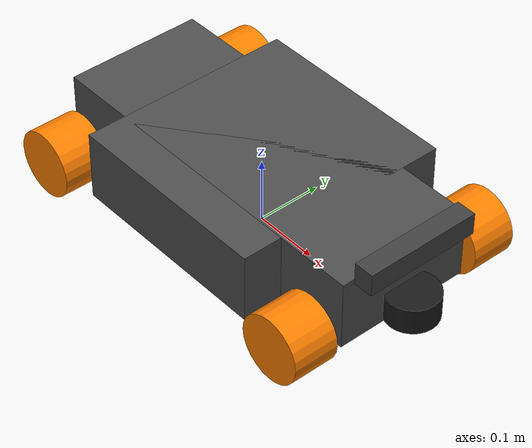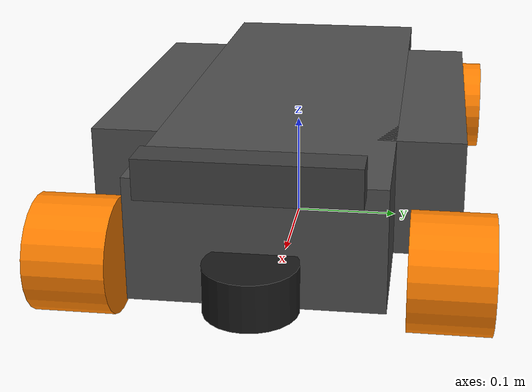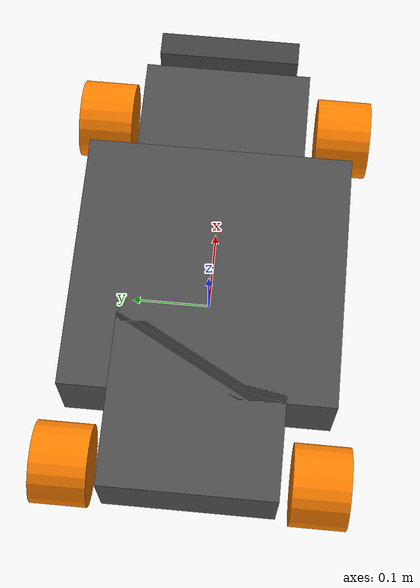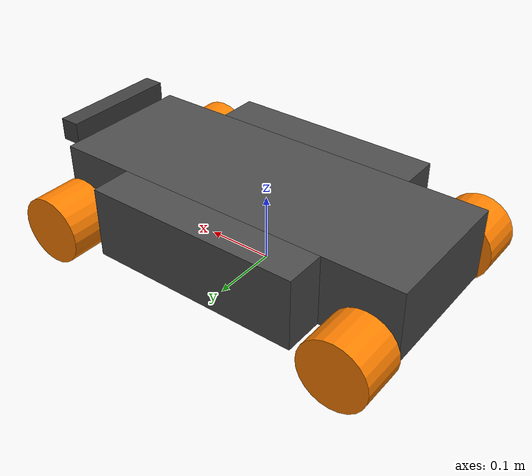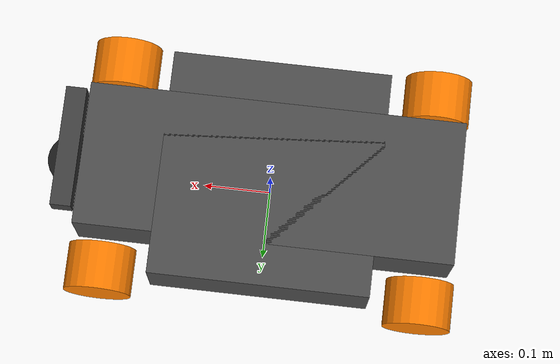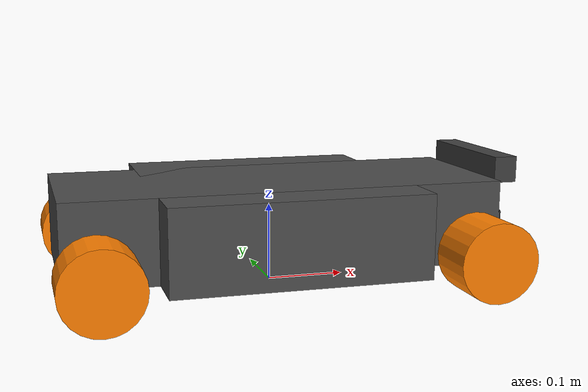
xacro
<?xml version="1.0"?>
<robot name="caramelo" xmlns:xacro="http://ros.org/wiki/xacro">

  <!-- Propriedades -->
  <xacro:property name="M_PI" value="3.1415926535897931" />

  <!-- Argumentos -->
  <xacro:arg name="robot_name" default="caramelo"/>
  <xacro:arg name="prefix" default=""/>

  <!-- Argumento para Gazebo Ignition ou Gazebo Classic -->
  <xacro:arg name="is_ignition" default="true"/>

  <!-- Inclusões -->
  <xacro:include filename="$(find caramelo_description)/URDF/robot_base.xacro" />
  <xacro:include filename="$(find caramelo_description)/URDF/robot_mecanum_wheel.xacro" />
  <xacro:include filename="$(find caramelo_description)/URDF/lidar_sensor.xacro" />
  <xacro:include filename="$(find caramelo_description)/URDF/zed_camera.xacro" />
  <xacro:include filename="$(find caramelo_description)/URDF/robot_ros2_control.xacro" />

  <!-- Base -->
  <xacro:robot_base
    prefix="$(arg prefix)"/>

  <!-- Rodas mecanum -->
  <xacro:mecanum_wheel
    prefix="$(arg prefix)"
    side="front_left"
    x_reflect="1"
    y_reflect="1"/>

  <xacro:mecanum_wheel
    prefix="$(arg prefix)"
    side="front_right"
    x_reflect="1"
    y_reflect="-1"/>

  <xacro:mecanum_wheel
    prefix="$(arg prefix)"
    side="back_left"
    x_reflect="-1"
    y_reflect="1"/>

  <xacro:mecanum_wheel
    prefix="$(arg prefix)"
    side="back_right"
    x_reflect="-1"
    y_reflect="-1"/>

  <!-- RPLidar S2 - Posicionado na face frontal do robô -->
  <xacro:lidar_sensor
    prefix="$(arg prefix)"
    parent="base_link"
    frame_id="laser_frame"
    xyz_offset="0.292 0 0.026"
    rpy_offset="0 0 0"
    mesh_xyz_offset="0 0 0"
    mesh_rpy_offset="0 0 0"
    topic_name="scan"/>

  <!-- ZED 2i Camera - Posicionada no centro especificado -->
  <xacro:zed_camera
    prefix="$(arg prefix)"
    parent="base_link"
    frame_id="zed_camera"
    xyz_offset="0.291 0 0.116"
    rpy_offset="0 0 0"
    mesh_xyz_offset="0 0 0"
    mesh_rpy_offset="0 0 ${M_PI/2}"
    is_ignition="$(arg is_ignition)"/>

</robot>

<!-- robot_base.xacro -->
<robot xmlns:xacro="http://www.ros.org/wiki/xacro">

  <!-- Propriedades da base do robô Caramelo -->
  <xacro:property name="mass" value="22.0"/>
  <xacro:property name="width_vertical" value="0.550"/>   <!-- Comprimento -->
  <xacro:property name="depth_vertical" value="0.210"/>   <!-- Largura -->
  <xacro:property name="width_horizontal" value="0.330"/>   <!-- Comprimento -->
  <xacro:property name="depth_horizontal" value="0.320"/>   <!-- Largura -->
  <xacro:property name="height" value="0.105"/>  <!-- Altura -->
  <xacro:property name="wheel_radius" value="0.05"/>

  <xacro:macro name="robot_base" params="prefix">
    <!-- BAsefootprint link -->
    <link name="${prefix}base_footprint"/>

    <!-- Link da base (base_link agora toca o chão) -->
    <link name="${prefix}base_link">

      <visual>
        <origin xyz="0 0 ${height/2.0}" rpy="0 0 0"/>
        <geometry>
          <box size="${width_vertical} ${depth_vertical} ${height}"/>
        </geometry>
        <material name="darkgray">
          <color rgba="0.3 0.3 0.3 1.0"/>
        </material>
      </visual>
      <visual>
        <origin xyz="0 0 ${height/2.0}" rpy="0 0 0"/>
        <geometry>
          <box size="${depth_horizontal} ${width_horizontal} ${height}"/>
        </geometry>
        <material name="darkgray">
          <color rgba="0.3 0.3 0.3 1.0"/>
        </material>
      </visual>

      <collision>
        <origin xyz="0 0 ${height/2.0}" rpy="0 0 0"/>
        <geometry>
          <box size="${width_vertical} ${depth_vertical} ${height}"/>
        </geometry>
      </collision>

      <inertial>
        <mass value="${mass}"/>
        <origin xyz="0 0 ${height/2.0}" rpy="0 0 0"/>
        <inertia
          ixx="${1/12.0 * mass * (height*height + depth_vertical*depth_vertical)}"
          iyy="${1/12.0 * mass * (width_vertical*width_vertical + depth_vertical*depth_vertical)}"
          izz="${1/12.0 * mass * (width_vertical*width_vertical + height*height)}"
          ixy="0.0" ixz="0.0" iyz="0.0"/>
      </inertial>
    </link>

    <!-- Joint com o footprint (ajustado para as dimensões do Caramelo) -->
    <joint name="${prefix}base_joint" type="fixed">
      <parent link="${prefix}base_footprint"/>
      <child link="${prefix}base_link"/>
      <origin xyz="0 0 ${wheel_radius - 0.02}" rpy="0 0 0"/>
    </joint>

    <!-- Aparência no Gazebo -->
    <gazebo reference="${prefix}base_link">
      <visual>
        <material>
          <ambient>0.3 0.3 0.3 1.0</ambient>
          <diffuse>0.3 0.3 0.3 1.0</diffuse>
          <specular>0.1 0.1 0.1 1.0</specular>
          <emissive>0.0 0.0 0.0 1.0</emissive>
        </material>
      </visual>
    </gazebo>

  </xacro:macro>

</robot>

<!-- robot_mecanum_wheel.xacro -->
<robot xmlns:xacro="http://www.ros.org/wiki/xacro">

  <!-- Especificações das rodas mecanum do robô Caramelo -->
  <xacro:property name="wheel_radius" value="0.05" />
  <xacro:property name="wheel_width" value="0.069" />
  <xacro:property name="wheel_mass" value="3.0" />
  <xacro:property name="wheel_separation" value="0.310" /> <!-- Distância entre as rodas 21 + 3 + 7 -->
  <xacro:property name="wheel_base" value="0.470" />

  <xacro:macro name="mecanum_wheel" params="prefix side x_reflect y_reflect">
    <link name="${prefix}${side}_wheel_link">
      <!-- Geometria visual: roda como cilindro -->
      <visual>
        <origin xyz="0 0 0" rpy="${pi/2} 0 0"/>
        <geometry>
          <cylinder radius="${wheel_radius}" length="${wheel_width}"/>
        </geometry>
        <material name="orange">
          <color rgba="1.0 0.5 0.0 1.0"/>
        </material>
      </visual>

      <!-- Geometria de colisão: cilindro simples para otimização de performance -->
      <collision>
        <origin xyz="0 0 0" rpy="${pi/2} 0 0"/>
        <geometry>
          <cylinder radius="${wheel_radius}" length="${wheel_width}"/>
        </geometry>
      </collision>

      <!-- Propriedades inerciais baseadas no cilindro -->
      <inertial>
        <origin xyz="0 0 0" rpy="0 0 0"/>
        <mass value="${wheel_mass}"/>
        <inertia
          ixx="${(wheel_mass/12.0) * (3*wheel_radius*wheel_radius + wheel_width*wheel_width)}" ixy="0" ixz="0"
          iyy="${(wheel_mass/2.0) * (wheel_radius*wheel_radius)}" iyz="0"
          izz="${(wheel_mass/12.0) * (3*wheel_radius*wheel_radius + wheel_width*wheel_width)}"/>
      </inertial>
    </link>

    <!-- Joint da roda: rotação contínua em torno do eixo Y -->
    <joint name="${prefix}${side}_wheel_joint" type="continuous">
      <axis xyz="0 1 0"/>
      <parent link="${prefix}base_link"/>
      <child link="${prefix}${side}_wheel_link"/>
      <origin xyz="${x_reflect*(wheel_base/2)} ${y_reflect*(wheel_separation/2)} 0.02" rpy="0 0 0"/>
    </joint>

    <!-- Configurações específicas do Gazebo para as rodas mecanum -->
    <gazebo reference="${prefix}${side}_wheel_link">
      <surface>
        <friction>
          <ode>
              <mu>1.0</mu>
              <mu2>0.0</mu2>
          </ode>
        </friction>
      </surface>
      <visual>
          <material>
              <ambient>1.0 0.5 0.0 1.0</ambient>
              <diffuse>1.0 0.5 0.0 1.0</diffuse>
              <specular>0.2 0.2 0.2 1.0</specular>
              <emissive>0.0 0.0 0.0 0.0</emissive>
          </material>
      </visual>
  </gazebo>

  </xacro:macro>
</robot>

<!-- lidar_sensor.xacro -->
<robot xmlns:xacro="http://www.ros.org/wiki/xacro">
  <xacro:property name="M_PI" value="3.1415926535897931" />

  <xacro:macro name="lidar_sensor" params="
    prefix:=''
    parent:='base_link'
    frame_id:='laser_frame'
    xyz_offset:='0 0 0'
    rpy_offset:='0 0 0'
    mesh_xyz_offset:='0 0 0'
    mesh_rpy_offset:='${-M_PI/2} 0 0'
    mesh_scale:='0.001 0.001 0.001'
    collision_xyz_offset:='0 0 0'
    collision_rpy_offset:='0 0 0'
    inertial_xyz_offset:='0 0 0'
    inertial_rpy_offset:='0 0 0'
    lidar_width:=0.077
    lidar_height:=0.0398
    mass:=0.185
    material_name:='rplidar_black'
    material_color:='0.1 0.1 0.1 1'
    gazebo_material_ambient:='0.1 0.1 0.1 1'
    gazebo_material_diffuse:='0.1 0.1 0.1 1'
    gazebo_material_specular:='0.1 0.1 0.1 1'
    update_rate:=10
    ray_count:=720
    min_angle:='-3.14159'
    max_angle:='3.14159'
    min_range:='0.20'
    max_range:='30.0'
    range_resolution:='0.013'
    topic_name:='scan'
    always_on:=true
    visualize:=false
    enable_collision:=false">

    <xacro:property name="radius" value="${lidar_width/2}" />
    <xacro:property name="ixx_iyy" value="${(mass/12) * (3 * radius * radius + lidar_height * lidar_height)}" />
    <xacro:property name="izz" value="${(mass/2) * (radius * radius)}" />

    <link name="${prefix}${frame_id}">
      <visual>
        <origin xyz="${mesh_xyz_offset}" rpy="${mesh_rpy_offset}"/>
        <geometry>
          <cylinder radius="${lidar_width/2}" length="${lidar_height}"/>
        </geometry>
        <material name="${material_name}">
          <color rgba="${material_color}"/>
        </material>
      </visual>

      <xacro:if value="${enable_collision}">
        <collision>
          <origin xyz="${collision_xyz_offset}" rpy="${collision_rpy_offset}"/>
          <geometry>
            <cylinder radius="${lidar_width/2}" length="${lidar_height}"/>
          </geometry>
        </collision>
      </xacro:if>

      <inertial>
        <mass value="${mass}" />
        <origin xyz="${inertial_xyz_offset}" rpy="${inertial_rpy_offset}"/>
        <inertia
          ixx="${ixx_iyy}"
          ixy="0.0"
          ixz="0.0"
          iyy="${ixx_iyy}"
          iyz="0.0"
          izz="${izz}" />
      </inertial>
    </link>

    <joint name="${prefix}${frame_id}_joint" type="fixed">
      <parent link="${prefix}${parent}"/>
      <child link="${prefix}${frame_id}" />
      <origin xyz="${xyz_offset}" rpy="${rpy_offset}"/>
    </joint>

    <gazebo reference="${prefix}${frame_id}">
      <material>
        <ambient>${gazebo_material_ambient}</ambient>
        <diffuse>${gazebo_material_diffuse}</diffuse>
        <specular>${gazebo_material_specular}</specular>
      </material>
      <sensor name="${prefix}lidar_sensor" type="gpu_lidar">
        <topic>${topic_name}</topic>
        <update_rate>${update_rate}</update_rate>
        <always_on>${always_on}</always_on>
        <visualize>${visualize}</visualize>
        <ray>
          <scan>
            <horizontal>
              <samples>${ray_count}</samples>
              <resolution>1</resolution>
              <min_angle>${min_angle}</min_angle>
              <max_angle>${max_angle}</max_angle>
            </horizontal>
            <vertical>
              <samples>1</samples>
              <resolution>1</resolution>
              <min_angle>0</min_angle>
              <max_angle>0</max_angle>
            </vertical>
          </scan>
          <range>
            <min>${min_range}</min>
            <max>${max_range}</max>
            <resolution>${range_resolution}</resolution>
          </range>
        </ray>
        <gz_frame_id>${prefix}${frame_id}</gz_frame_id>
      </sensor>
    </gazebo>
  </xacro:macro>
</robot>

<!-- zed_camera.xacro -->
<robot xmlns:xacro="http://www.ros.org/wiki/xacro">

  <!-- Propriedades da ZED 2i -->
  <xacro:property name="zed_baseline" value="0.12"/>  <!-- Distância entre câmeras estéreo -->
  <xacro:property name="zed_height" value="0.033"/>   <!-- Altura da ZED 2i -->
  <xacro:property name="zed_bottom_clearance" value="0.004"/>
  <xacro:property name="zed_screw_offset_x" value="0.0"/>
  <xacro:property name="zed_screw_offset_z" value="0.0"/>

  <!-- Dimensões físicas da ZED 2i -->
  <xacro:property name="zed_width" value="0.175"/>    <!-- Largura -->
  <xacro:property name="zed_depth" value="0.030"/>    <!-- Profundidade -->
  <xacro:property name="zed_mass" value="0.159"/>     <!-- Massa em kg -->

  <!-- Macro da câmera ZED 2i -->
  <xacro:macro name="zed_camera" params="
               prefix
               parent
               frame_id
               xyz_offset:='0 0 0'
               rpy_offset:='0 0 0'
               mesh_xyz_offset:='0 0 0'
               mesh_rpy_offset:='0 0 0'
               is_ignition:=true">

    <!-- Joint conectando ao link pai -->
    <joint name="${prefix}${frame_id}_joint" type="fixed">
      <parent link="${parent}"/>
      <child link="${prefix}${frame_id}"/>
      <origin xyz="${xyz_offset}" rpy="${rpy_offset}"/>
    </joint>

    <!-- Link principal da ZED -->
    <link name="${prefix}${frame_id}">
      <visual>
        <origin xyz="${mesh_xyz_offset}" rpy="${mesh_rpy_offset}"/>
        <geometry>
          <box size="${zed_width} ${zed_depth} ${zed_height}"/>
        </geometry>
        <material name="zed_mat">
          <color rgba="0.25 0.25 0.25 0.99"/>
        </material>
      </visual>

      <collision>
        <origin xyz="0 0 0" rpy="0 0 0"/>
        <geometry>
          <box size="${zed_width} ${zed_depth} ${zed_height}"/>
        </geometry>
      </collision>

      <inertial>
        <mass value="${zed_mass}"/>
        <origin xyz="0 0 0" rpy="0 0 0"/>
        <inertia ixx="0.000239" ixy="0.0" ixz="0.0"
                 iyy="0.000239" iyz="0.0"
                 izz="0.000451"/>
      </inertial>
    </link>

    <!-- Link da câmera esquerda -->
    <joint name="${prefix}${frame_id}_left_camera_joint" type="fixed">
      <parent link="${prefix}${frame_id}"/>
      <child link="${prefix}${frame_id}_left_camera_frame"/>
      <origin xyz="0 ${zed_baseline/2} 0" rpy="0 0 0"/>
    </joint>

    <link name="${prefix}${frame_id}_left_camera_frame"/>

    <!-- Joint da câmera esquerda optical -->
    <joint name="${prefix}${frame_id}_left_camera_optical_joint" type="fixed">
      <parent link="${prefix}${frame_id}_left_camera_frame"/>
      <child link="${prefix}${frame_id}_left_camera_optical_frame"/>
      <origin xyz="0 0 0" rpy="-1.5708 0 -1.5708"/>
    </joint>

    <link name="${prefix}${frame_id}_left_camera_optical_frame"/>

    <!-- Link da câmera direita -->
    <joint name="${prefix}${frame_id}_right_camera_joint" type="fixed">
      <parent link="${prefix}${frame_id}"/>
      <child link="${prefix}${frame_id}_right_camera_frame"/>
      <origin xyz="0 -${zed_baseline/2} 0" rpy="0 0 0"/>
    </joint>

    <link name="${prefix}${frame_id}_right_camera_frame"/>

    <!-- Joint da câmera direita optical -->
    <joint name="${prefix}${frame_id}_right_camera_optical_joint" type="fixed">
      <parent link="${prefix}${frame_id}_right_camera_frame"/>
      <child link="${prefix}${frame_id}_right_camera_optical_frame"/>
      <origin xyz="0 0 0" rpy="-1.5708 0 -1.5708"/>
    </joint>

    <link name="${prefix}${frame_id}_right_camera_optical_frame"/>

    <!-- IMU Link -->
    <joint name="${prefix}${frame_id}_imu_joint" type="fixed">
      <parent link="${prefix}${frame_id}"/>
      <child link="${prefix}${frame_id}_imu_link"/>
      <origin xyz="0 0 0" rpy="0 0 0"/>
    </joint>

    <link name="${prefix}${frame_id}_imu_link"/>

    <!-- Plugin do Gazebo para a ZED (Ignition Gazebo) -->
    <xacro:if value="${is_ignition}">
      <gazebo reference="${prefix}${frame_id}">
        <!-- Plugin da câmera estéreo -->
        <sensor name="zed_left_camera" type="camera">
          <pose>0 ${zed_baseline/2} 0 0 0 0</pose>
          <camera>
            <horizontal_fov>1.919</horizontal_fov>
            <image>
              <width>1280</width>
              <height>720</height>
              <format>R8G8B8</format>
            </image>
            <clip>
              <near>0.02</near>
              <far>300</far>
            </clip>
            <noise>
              <type>gaussian</type>
              <mean>0.0</mean>
              <stddev>0.007</stddev>
            </noise>
          </camera>
          <always_on>1</always_on>
          <update_rate>30</update_rate>
          <visualize>false</visualize>
          <topic>zed/left/image_rect_color</topic>
        </sensor>

        <sensor name="zed_right_camera" type="camera">
          <pose>0 -${zed_baseline/2} 0 0 0 0</pose>
          <camera>
            <horizontal_fov>1.919</horizontal_fov>
            <image>
              <width>1280</width>
              <height>720</height>
              <format>R8G8B8</format>
            </image>
            <clip>
              <near>0.02</near>
              <far>300</far>
            </clip>
            <noise>
              <type>gaussian</type>
              <mean>0.0</mean>
              <stddev>0.007</stddev>
            </noise>
          </camera>
          <always_on>1</always_on>
          <update_rate>30</update_rate>
          <visualize>false</visualize>
          <topic>zed/right/image_rect_color</topic>
        </sensor>

        <!-- Plugin da câmera de profundidade -->
        <sensor name="zed_depth_camera" type="depth_camera">
          <pose>0 0 0 0 0 0</pose>
          <camera>
            <horizontal_fov>1.919</horizontal_fov>
            <image>
              <width>1280</width>
              <height>720</height>
              <format>R_FLOAT32</format>
            </image>
            <clip>
              <near>0.3</near>
              <far>20.0</far>
            </clip>
            <noise>
              <type>gaussian</type>
              <mean>0.0</mean>
              <stddev>0.1</stddev>
            </noise>
          </camera>
          <always_on>1</always_on>
          <update_rate>30</update_rate>
          <visualize>false</visualize>
          <topic>zed/depth/depth_registered</topic>
        </sensor>
      </gazebo>

      <!-- Plugin do IMU para Ignition Gazebo -->
      <gazebo reference="${prefix}${frame_id}_imu_link">
        <sensor name="imu_sensor" type="imu">
          <always_on>1</always_on>
          <update_rate>100</update_rate>
          <visualize>true</visualize>
          <topic>zed/imu/data</topic>
          <imu>
            <angular_velocity>
              <x>
                <noise type="gaussian">
                  <mean>0.0</mean>
                  <stddev>2e-4</stddev>
                  <bias_mean>0.0000075</bias_mean>
                  <bias_stddev>0.0000008</bias_stddev>
                </noise>
              </x>
              <y>
                <noise type="gaussian">
                  <mean>0.0</mean>
                  <stddev>2e-4</stddev>
                  <bias_mean>0.0000075</bias_mean>
                  <bias_stddev>0.0000008</bias_stddev>
                </noise>
              </y>
              <z>
                <noise type="gaussian">
                  <mean>0.0</mean>
                  <stddev>2e-4</stddev>
                  <bias_mean>0.0000075</bias_mean>
                  <bias_stddev>0.0000008</bias_stddev>
                </noise>
              </z>
            </angular_velocity>
            <linear_acceleration>
              <x>
                <noise type="gaussian">
                  <mean>0.0</mean>
                  <stddev>1.7e-2</stddev>
                  <bias_mean>0.1</bias_mean>
                  <bias_stddev>0.001</bias_stddev>
                </noise>
              </x>
              <y>
                <noise type="gaussian">
                  <mean>0.0</mean>
                  <stddev>1.7e-2</stddev>
                  <bias_mean>0.1</bias_mean>
                  <bias_stddev>0.001</bias_stddev>
                </noise>
              </y>
              <z>
                <noise type="gaussian">
                  <mean>0.0</mean>
                  <stddev>1.7e-2</stddev>
                  <bias_mean>0.1</bias_mean>
                  <bias_stddev>0.001</bias_stddev>
                </noise>
              </z>
            </linear_acceleration>
          </imu>
        </sensor>
      </gazebo>
    </xacro:if>

  </xacro:macro>

</robot>
